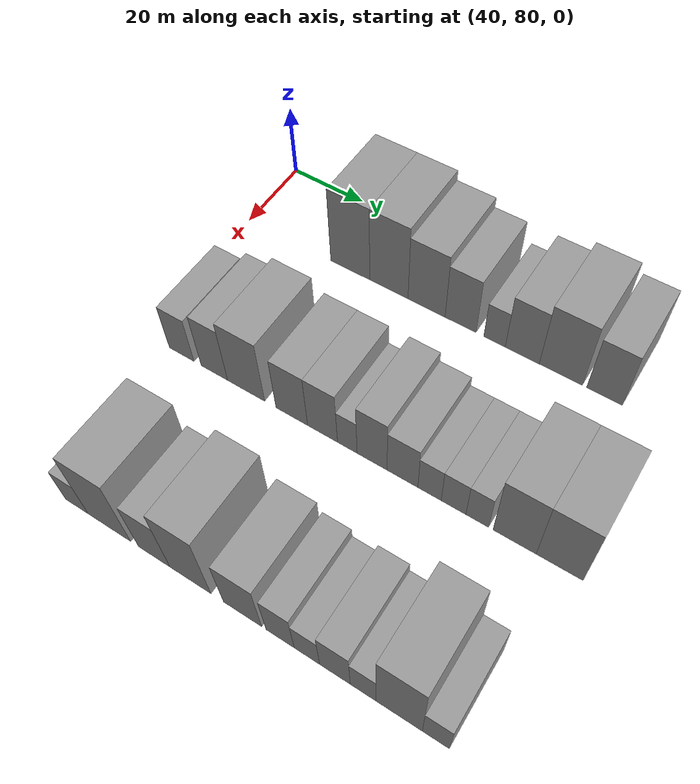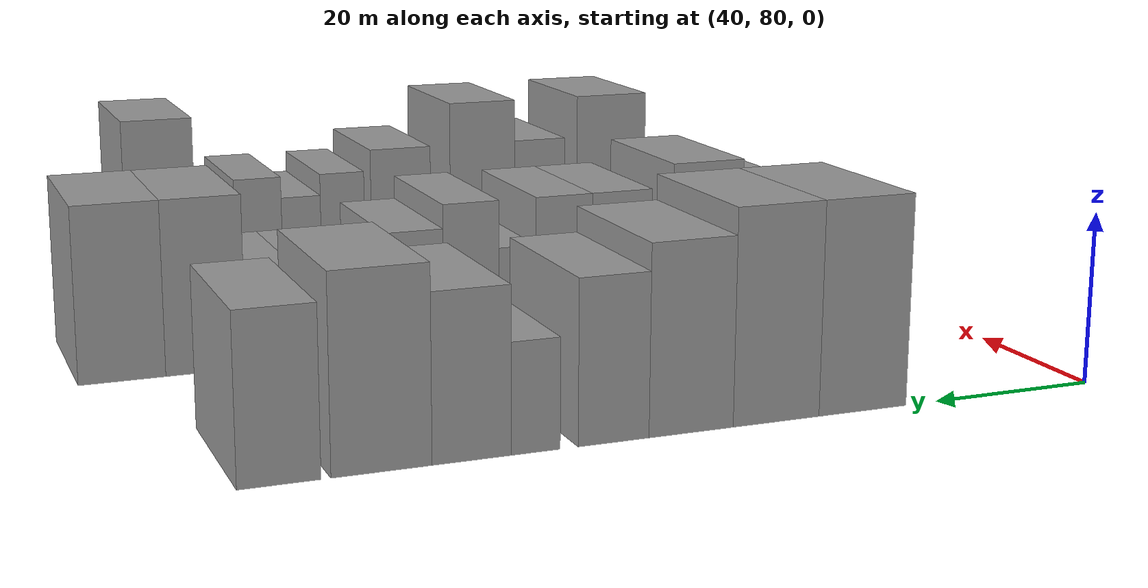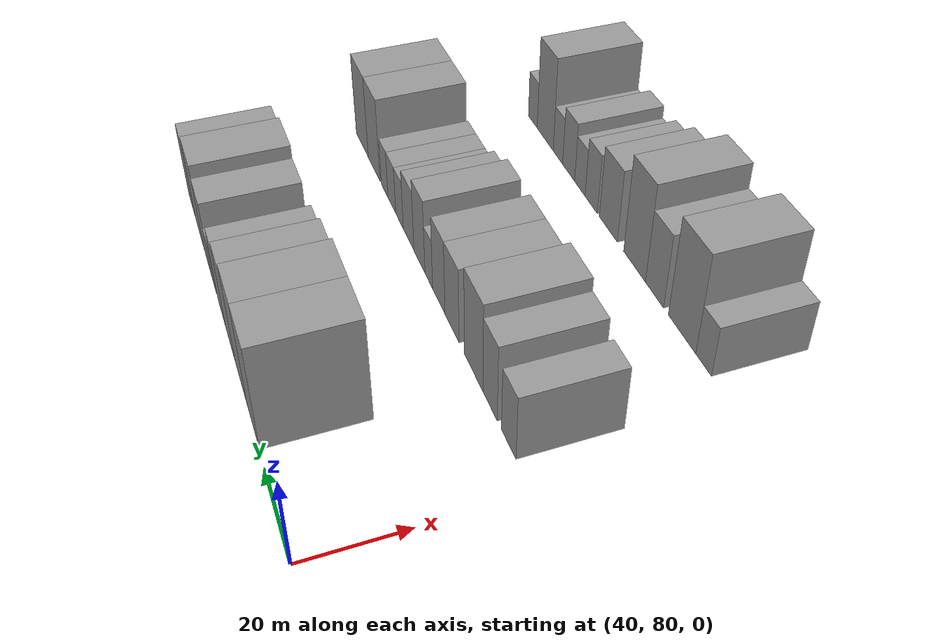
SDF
<sdf version="1.6">
 <world name="default">
  <model name="building_53">
   <static>1</static>
   <pose>50.0000 109.4532 0 0.000000 0.000000 0.000000</pose>
   <link name="link">
    <pose>0 0 12.00 0 0 0</pose>
    <collision name="collision"><geometry><box><size>20.0000 10.9725 24.0000</size></box></geometry></collision>
    <visual name="visual">
     <cast_shadows>0</cast_shadows>
     <geometry><box><size>20.0000 10.9725 24.0000</size></box></geometry>
     <material>
      <script>
       <uri>model://grey_wall/materials/scripts</uri>
       <uri>model://grey_wall/materials/textures</uri>
       <name>vrc/grey_wall</name>
      </script>
     </material>
    </visual>
   </link>
  </model>
  <model name="building_54">
   <static>1</static>
   <pose>50.0000 120.1569 0 0.000000 0.000000 0.000000</pose>
   <link name="link">
    <pose>0 0 12.00 0 0 0</pose>
    <collision name="collision"><geometry><box><size>20.0000 10.4349 24.0000</size></box></geometry></collision>
    <visual name="visual">
     <cast_shadows>0</cast_shadows>
     <geometry><box><size>20.0000 10.4349 24.0000</size></box></geometry>
     <material>
      <script>
       <uri>model://grey_wall/materials/scripts</uri>
       <uri>model://grey_wall/materials/textures</uri>
       <name>vrc/grey_wall</name>
      </script>
     </material>
    </visual>
   </link>
  </model>
  <model name="building_55">
   <static>1</static>
   <pose>50.0000 130.3125 0 0.000000 0.000000 0.000000</pose>
   <link name="link">
    <pose>0 0 10.50 0 0 0</pose>
    <collision name="collision"><geometry><box><size>20.0000 9.8762 21.0000</size></box></geometry></collision>
    <visual name="visual">
     <cast_shadows>0</cast_shadows>
     <geometry><box><size>20.0000 9.8762 21.0000</size></box></geometry>
     <material>
      <script>
       <uri>model://grey_wall/materials/scripts</uri>
       <uri>model://grey_wall/materials/textures</uri>
       <name>vrc/grey_wall</name>
      </script>
     </material>
    </visual>
   </link>
  </model>
  <model name="building_56">
   <static>1</static>
   <pose>50.0000 139.2779 0 0.000000 0.000000 0.000000</pose>
   <link name="link">
    <pose>0 0 9.00 0 0 0</pose>
    <collision name="collision"><geometry><box><size>20.0000 8.0546 18.0000</size></box></geometry></collision>
    <visual name="visual">
     <cast_shadows>0</cast_shadows>
     <geometry><box><size>20.0000 8.0546 18.0000</size></box></geometry>
     <material>
      <script>
       <uri>model://grey_wall/materials/scripts</uri>
       <uri>model://grey_wall/materials/textures</uri>
       <name>vrc/grey_wall</name>
      </script>
     </material>
    </visual>
   </link>
  </model>
  <model name="building_57">
   <static>1</static>
   <pose>50.0000 148.0063 0 0.000000 0.000000 0.000000</pose>
   <link name="link">
    <pose>0 0 6.00 0 0 0</pose>
    <collision name="collision"><geometry><box><size>20.0000 5.4024 12.0000</size></box></geometry></collision>
    <visual name="visual">
     <cast_shadows>0</cast_shadows>
     <geometry><box><size>20.0000 5.4024 12.0000</size></box></geometry>
     <material>
      <script>
       <uri>model://grey_wall/materials/scripts</uri>
       <uri>model://grey_wall/materials/textures</uri>
       <name>vrc/grey_wall</name>
      </script>
     </material>
    </visual>
   </link>
  </model>
  <model name="building_58">
   <static>1</static>
   <pose>50.0000 154.9467 0 0.000000 0.000000 0.000000</pose>
   <link name="link">
    <pose>0 0 9.00 0 0 0</pose>
    <collision name="collision"><geometry><box><size>20.0000 8.4783 18.0000</size></box></geometry></collision>
    <visual name="visual">
     <cast_shadows>0</cast_shadows>
     <geometry><box><size>20.0000 8.4783 18.0000</size></box></geometry>
     <material>
      <script>
       <uri>model://grey_wall/materials/scripts</uri>
       <uri>model://grey_wall/materials/textures</uri>
       <name>vrc/grey_wall</name>
      </script>
     </material>
    </visual>
   </link>
  </model>
  <model name="building_59">
   <static>1</static>
   <pose>50.0000 164.4243 0 0.000000 0.000000 0.000000</pose>
   <link name="link">
    <pose>0 0 10.50 0 0 0</pose>
    <collision name="collision"><geometry><box><size>20.0000 10.4770 21.0000</size></box></geometry></collision>
    <visual name="visual">
     <cast_shadows>0</cast_shadows>
     <geometry><box><size>20.0000 10.4770 21.0000</size></box></geometry>
     <material>
      <script>
       <uri>model://grey_wall/materials/scripts</uri>
       <uri>model://grey_wall/materials/textures</uri>
       <name>vrc/grey_wall</name>
      </script>
     </material>
    </visual>
   </link>
  </model>
  <model name="building_60">
   <static>1</static>
   <pose>50.0000 174.8707 0 0.000000 0.000000 0.000000</pose>
   <link name="link">
    <pose>0 0 9.00 0 0 0</pose>
    <collision name="collision"><geometry><box><size>20.0000 8.4156 18.0000</size></box></geometry></collision>
    <visual name="visual">
     <cast_shadows>0</cast_shadows>
     <geometry><box><size>20.0000 8.4156 18.0000</size></box></geometry>
     <material>
      <script>
       <uri>model://grey_wall/materials/scripts</uri>
       <uri>model://grey_wall/materials/textures</uri>
       <name>vrc/grey_wall</name>
      </script>
     </material>
    </visual>
   </link>
  </model>
  <model name="building_137">
   <static>1</static>
   <pose>90.0000 90.9222 0 0.000000 0.000000 0.000000</pose>
   <link name="link">
    <pose>0 0 7.50 0 0 0</pose>
    <collision name="collision"><geometry><box><size>20.0000 6.9370 15.0000</size></box></geometry></collision>
    <visual name="visual">
     <cast_shadows>0</cast_shadows>
     <geometry><box><size>20.0000 6.9370 15.0000</size></box></geometry>
     <material>
      <script>
       <uri>model://grey_wall/materials/scripts</uri>
       <uri>model://grey_wall/materials/textures</uri>
       <name>vrc/grey_wall</name>
      </script>
     </material>
    </visual>
   </link>
  </model>
  <model name="building_138">
   <static>1</static>
   <pose>90.0000 100.0258 0 0.000000 0.000000 0.000000</pose>
   <link name="link">
    <pose>0 0 9.00 0 0 0</pose>
    <collision name="collision"><geometry><box><size>20.0000 7.2702 18.0000</size></box></geometry></collision>
    <visual name="visual">
     <cast_shadows>0</cast_shadows>
     <geometry><box><size>20.0000 7.2702 18.0000</size></box></geometry>
     <material>
      <script>
       <uri>model://grey_wall/materials/scripts</uri>
       <uri>model://grey_wall/materials/textures</uri>
       <name>vrc/grey_wall</name>
      </script>
     </material>
    </visual>
   </link>
  </model>
  <model name="building_139">
   <static>1</static>
   <pose>90.0000 108.6352 0 0.000000 0.000000 0.000000</pose>
   <link name="link">
    <pose>0 0 10.50 0 0 0</pose>
    <collision name="collision"><geometry><box><size>20.0000 9.9487 21.0000</size></box></geometry></collision>
    <visual name="visual">
     <cast_shadows>0</cast_shadows>
     <geometry><box><size>20.0000 9.9487 21.0000</size></box></geometry>
     <material>
      <script>
       <uri>model://grey_wall/materials/scripts</uri>
       <uri>model://grey_wall/materials/textures</uri>
       <name>vrc/grey_wall</name>
      </script>
     </material>
    </visual>
   </link>
  </model>
  <model name="building_140">
   <static>1</static>
   <pose>90.0000 120.7035 0 0.000000 0.000000 0.000000</pose>
   <link name="link">
    <pose>0 0 9.00 0 0 0</pose>
    <collision name="collision"><geometry><box><size>20.0000 8.1879 18.0000</size></box></geometry></collision>
    <visual name="visual">
     <cast_shadows>0</cast_shadows>
     <geometry><box><size>20.0000 8.1879 18.0000</size></box></geometry>
     <material>
      <script>
       <uri>model://grey_wall/materials/scripts</uri>
       <uri>model://grey_wall/materials/textures</uri>
       <name>vrc/grey_wall</name>
      </script>
     </material>
    </visual>
   </link>
  </model>
  <model name="building_141">
   <static>1</static>
   <pose>90.0000 128.5913 0 0.000000 0.000000 0.000000</pose>
   <link name="link">
    <pose>0 0 9.00 0 0 0</pose>
    <collision name="collision"><geometry><box><size>20.0000 7.5877 18.0000</size></box></geometry></collision>
    <visual name="visual">
     <cast_shadows>0</cast_shadows>
     <geometry><box><size>20.0000 7.5877 18.0000</size></box></geometry>
     <material>
      <script>
       <uri>model://grey_wall/materials/scripts</uri>
       <uri>model://grey_wall/materials/textures</uri>
       <name>vrc/grey_wall</name>
      </script>
     </material>
    </visual>
   </link>
  </model>
  <model name="building_142">
   <static>1</static>
   <pose>90.0000 134.8174 0 0.000000 0.000000 0.000000</pose>
   <link name="link">
    <pose>0 0 6.00 0 0 0</pose>
    <collision name="collision"><geometry><box><size>20.0000 4.8645 12.0000</size></box></geometry></collision>
    <visual name="visual">
     <cast_shadows>0</cast_shadows>
     <geometry><box><size>20.0000 4.8645 12.0000</size></box></geometry>
     <material>
      <script>
       <uri>model://grey_wall/materials/scripts</uri>
       <uri>model://grey_wall/materials/textures</uri>
       <name>vrc/grey_wall</name>
      </script>
     </material>
    </visual>
   </link>
  </model>
  <model name="building_143">
   <static>1</static>
   <pose>90.0000 140.9001 0 0.000000 0.000000 0.000000</pose>
   <link name="link">
    <pose>0 0 9.00 0 0 0</pose>
    <collision name="collision"><geometry><box><size>20.0000 7.3009 18.0000</size></box></geometry></collision>
    <visual name="visual">
     <cast_shadows>0</cast_shadows>
     <geometry><box><size>20.0000 7.3009 18.0000</size></box></geometry>
     <material>
      <script>
       <uri>model://grey_wall/materials/scripts</uri>
       <uri>model://grey_wall/materials/textures</uri>
       <name>vrc/grey_wall</name>
      </script>
     </material>
    </visual>
   </link>
  </model>
  <model name="building_144">
   <static>1</static>
   <pose>90.0000 148.2397 0 0.000000 0.000000 0.000000</pose>
   <link name="link">
    <pose>0 0 7.50 0 0 0</pose>
    <collision name="collision"><geometry><box><size>20.0000 7.3783 15.0000</size></box></geometry></collision>
    <visual name="visual">
     <cast_shadows>0</cast_shadows>
     <geometry><box><size>20.0000 7.3783 15.0000</size></box></geometry>
     <material>
      <script>
       <uri>model://grey_wall/materials/scripts</uri>
       <uri>model://grey_wall/materials/textures</uri>
       <name>vrc/grey_wall</name>
      </script>
     </material>
    </visual>
   </link>
  </model>
  <model name="building_145">
   <static>1</static>
   <pose>90.0000 154.6604 0 0.000000 0.000000 0.000000</pose>
   <link name="link">
    <pose>0 0 6.00 0 0 0</pose>
    <collision name="collision"><geometry><box><size>20.0000 5.4632 12.0000</size></box></geometry></collision>
    <visual name="visual">
     <cast_shadows>0</cast_shadows>
     <geometry><box><size>20.0000 5.4632 12.0000</size></box></geometry>
     <material>
      <script>
       <uri>model://grey_wall/materials/scripts</uri>
       <uri>model://grey_wall/materials/textures</uri>
       <name>vrc/grey_wall</name>
      </script>
     </material>
    </visual>
   </link>
  </model>
  <model name="building_146">
   <static>1</static>
   <pose>90.0000 160.2435 0 0.000000 0.000000 0.000000</pose>
   <link name="link">
    <pose>0 0 6.00 0 0 0</pose>
    <collision name="collision"><geometry><box><size>20.0000 5.7029 12.0000</size></box></geometry></collision>
    <visual name="visual">
     <cast_shadows>0</cast_shadows>
     <geometry><box><size>20.0000 5.7029 12.0000</size></box></geometry>
     <material>
      <script>
       <uri>model://grey_wall/materials/scripts</uri>
       <uri>model://grey_wall/materials/textures</uri>
       <name>vrc/grey_wall</name>
      </script>
     </material>
    </visual>
   </link>
  </model>
  <model name="building_147">
   <static>1</static>
   <pose>90.0000 165.6579 0 0.000000 0.000000 0.000000</pose>
   <link name="link">
    <pose>0 0 6.00 0 0 0</pose>
    <collision name="collision"><geometry><box><size>20.0000 5.1260 12.0000</size></box></geometry></collision>
    <visual name="visual">
     <cast_shadows>0</cast_shadows>
     <geometry><box><size>20.0000 5.1260 12.0000</size></box></geometry>
     <material>
      <script>
       <uri>model://grey_wall/materials/scripts</uri>
       <uri>model://grey_wall/materials/textures</uri>
       <name>vrc/grey_wall</name>
      </script>
     </material>
    </visual>
   </link>
  </model>
  <model name="building_148">
   <static>1</static>
   <pose>90.0000 173.9719 0 0.000000 0.000000 0.000000</pose>
   <link name="link">
    <pose>0 0 10.50 0 0 0</pose>
    <collision name="collision"><geometry><box><size>20.0000 9.5020 21.0000</size></box></geometry></collision>
    <visual name="visual">
     <cast_shadows>0</cast_shadows>
     <geometry><box><size>20.0000 9.5020 21.0000</size></box></geometry>
     <material>
      <script>
       <uri>model://grey_wall/materials/scripts</uri>
       <uri>model://grey_wall/materials/textures</uri>
       <name>vrc/grey_wall</name>
      </script>
     </material>
    </visual>
   </link>
  </model>
  <model name="building_149">
   <static>1</static>
   <pose>90.0000 183.7582 0 0.000000 0.000000 0.000000</pose>
   <link name="link">
    <pose>0 0 10.50 0 0 0</pose>
    <collision name="collision"><geometry><box><size>20.0000 10.0707 21.0000</size></box></geometry></collision>
    <visual name="visual">
     <cast_shadows>0</cast_shadows>
     <geometry><box><size>20.0000 10.0707 21.0000</size></box></geometry>
     <material>
      <script>
       <uri>model://grey_wall/materials/scripts</uri>
       <uri>model://grey_wall/materials/textures</uri>
       <name>vrc/grey_wall</name>
      </script>
     </material>
    </visual>
   </link>
  </model>
  <model name="building_221">
   <static>1</static>
   <pose>130.0000 96.2770 0 0.000000 0.000000 0.000000</pose>
   <link name="link">
    <pose>0 0 6.00 0 0 0</pose>
    <collision name="collision"><geometry><box><size>20.0000 5.9843 12.0000</size></box></geometry></collision>
    <visual name="visual">
     <cast_shadows>0</cast_shadows>
     <geometry><box><size>20.0000 5.9843 12.0000</size></box></geometry>
     <material>
      <script>
       <uri>model://grey_wall/materials/scripts</uri>
       <uri>model://grey_wall/materials/textures</uri>
       <name>vrc/grey_wall</name>
      </script>
     </material>
    </visual>
   </link>
  </model>
  <model name="building_222">
   <static>1</static>
   <pose>130.0000 104.7714 0 0.000000 0.000000 0.000000</pose>
   <link name="link">
    <pose>0 0 12.00 0 0 0</pose>
    <collision name="collision"><geometry><box><size>20.0000 11.0046 24.0000</size></box></geometry></collision>
    <visual name="visual">
     <cast_shadows>0</cast_shadows>
     <geometry><box><size>20.0000 11.0046 24.0000</size></box></geometry>
     <material>
      <script>
       <uri>model://grey_wall/materials/scripts</uri>
       <uri>model://grey_wall/materials/textures</uri>
       <name>vrc/grey_wall</name>
      </script>
     </material>
    </visual>
   </link>
  </model>
  <model name="building_223">
   <static>1</static>
   <pose>130.0000 116.2031 0 0.000000 0.000000 0.000000</pose>
   <link name="link">
    <pose>0 0 9.00 0 0 0</pose>
    <collision name="collision"><geometry><box><size>20.0000 7.8589 18.0000</size></box></geometry></collision>
    <visual name="visual">
     <cast_shadows>0</cast_shadows>
     <geometry><box><size>20.0000 7.8589 18.0000</size></box></geometry>
     <material>
      <script>
       <uri>model://grey_wall/materials/scripts</uri>
       <uri>model://grey_wall/materials/textures</uri>
       <name>vrc/grey_wall</name>
      </script>
     </material>
    </visual>
   </link>
  </model>
  <model name="building_224">
   <static>1</static>
   <pose>130.0000 125.1048 0 0.000000 0.000000 0.000000</pose>
   <link name="link">
    <pose>0 0 12.00 0 0 0</pose>
    <collision name="collision"><geometry><box><size>20.0000 9.9444 24.0000</size></box></geometry></collision>
    <visual name="visual">
     <cast_shadows>0</cast_shadows>
     <geometry><box><size>20.0000 9.9444 24.0000</size></box></geometry>
     <material>
      <script>
       <uri>model://grey_wall/materials/scripts</uri>
       <uri>model://grey_wall/materials/textures</uri>
       <name>vrc/grey_wall</name>
      </script>
     </material>
    </visual>
   </link>
  </model>
  <model name="building_225">
   <static>1</static>
   <pose>130.0000 137.5329 0 0.000000 0.000000 0.000000</pose>
   <link name="link">
    <pose>0 0 9.00 0 0 0</pose>
    <collision name="collision"><geometry><box><size>20.0000 8.9117 18.0000</size></box></geometry></collision>
    <visual name="visual">
     <cast_shadows>0</cast_shadows>
     <geometry><box><size>20.0000 8.9117 18.0000</size></box></geometry>
     <material>
      <script>
       <uri>model://grey_wall/materials/scripts</uri>
       <uri>model://grey_wall/materials/textures</uri>
       <name>vrc/grey_wall</name>
      </script>
     </material>
    </visual>
   </link>
  </model>
  <model name="building_226">
   <static>1</static>
   <pose>130.0000 146.1888 0 0.000000 0.000000 0.000000</pose>
   <link name="link">
    <pose>0 0 7.50 0 0 0</pose>
    <collision name="collision"><geometry><box><size>20.0000 6.4002 15.0000</size></box></geometry></collision>
    <visual name="visual">
     <cast_shadows>0</cast_shadows>
     <geometry><box><size>20.0000 6.4002 15.0000</size></box></geometry>
     <material>
      <script>
       <uri>model://grey_wall/materials/scripts</uri>
       <uri>model://grey_wall/materials/textures</uri>
       <name>vrc/grey_wall</name>
      </script>
     </material>
    </visual>
   </link>
  </model>
  <model name="building_227">
   <static>1</static>
   <pose>130.0000 152.2000 0 0.000000 0.000000 0.000000</pose>
   <link name="link">
    <pose>0 0 6.00 0 0 0</pose>
    <collision name="collision"><geometry><box><size>20.0000 5.6223 12.0000</size></box></geometry></collision>
    <visual name="visual">
     <cast_shadows>0</cast_shadows>
     <geometry><box><size>20.0000 5.6223 12.0000</size></box></geometry>
     <material>
      <script>
       <uri>model://grey_wall/materials/scripts</uri>
       <uri>model://grey_wall/materials/textures</uri>
       <name>vrc/grey_wall</name>
      </script>
     </material>
    </visual>
   </link>
  </model>
  <model name="building_228">
   <static>1</static>
   <pose>130.0000 158.3418 0 0.000000 0.000000 0.000000</pose>
   <link name="link">
    <pose>0 0 7.50 0 0 0</pose>
    <collision name="collision"><geometry><box><size>20.0000 6.6612 15.0000</size></box></geometry></collision>
    <visual name="visual">
     <cast_shadows>0</cast_shadows>
     <geometry><box><size>20.0000 6.6612 15.0000</size></box></geometry>
     <material>
      <script>
       <uri>model://grey_wall/materials/scripts</uri>
       <uri>model://grey_wall/materials/textures</uri>
       <name>vrc/grey_wall</name>
      </script>
     </material>
    </visual>
   </link>
  </model>
  <model name="building_229">
   <static>1</static>
   <pose>130.0000 164.3922 0 0.000000 0.000000 0.000000</pose>
   <link name="link">
    <pose>0 0 6.00 0 0 0</pose>
    <collision name="collision"><geometry><box><size>20.0000 5.4396 12.0000</size></box></geometry></collision>
    <visual name="visual">
     <cast_shadows>0</cast_shadows>
     <geometry><box><size>20.0000 5.4396 12.0000</size></box></geometry>
     <material>
      <script>
       <uri>model://grey_wall/materials/scripts</uri>
       <uri>model://grey_wall/materials/textures</uri>
       <name>vrc/grey_wall</name>
      </script>
     </material>
    </visual>
   </link>
  </model>
  <model name="building_230">
   <static>1</static>
   <pose>130.0000 171.9190 0 0.000000 0.000000 0.000000</pose>
   <link name="link">
    <pose>0 0 12.00 0 0 0</pose>
    <collision name="collision"><geometry><box><size>20.0000 9.6139 24.0000</size></box></geometry></collision>
    <visual name="visual">
     <cast_shadows>0</cast_shadows>
     <geometry><box><size>20.0000 9.6139 24.0000</size></box></geometry>
     <material>
      <script>
       <uri>model://grey_wall/materials/scripts</uri>
       <uri>model://grey_wall/materials/textures</uri>
       <name>vrc/grey_wall</name>
      </script>
     </material>
    </visual>
   </link>
  </model>
  <model name="building_231">
   <static>1</static>
   <pose>130.0000 179.4590 0 0.000000 0.000000 0.000000</pose>
   <link name="link">
    <pose>0 0 6.00 0 0 0</pose>
    <collision name="collision"><geometry><box><size>20.0000 5.4663 12.0000</size></box></geometry></collision>
    <visual name="visual">
     <cast_shadows>0</cast_shadows>
     <geometry><box><size>20.0000 5.4663 12.0000</size></box></geometry>
     <material>
      <script>
       <uri>model://grey_wall/materials/scripts</uri>
       <uri>model://grey_wall/materials/textures</uri>
       <name>vrc/grey_wall</name>
      </script>
     </material>
    </visual>
   </link>
  </model>
 </world>
</sdf>
